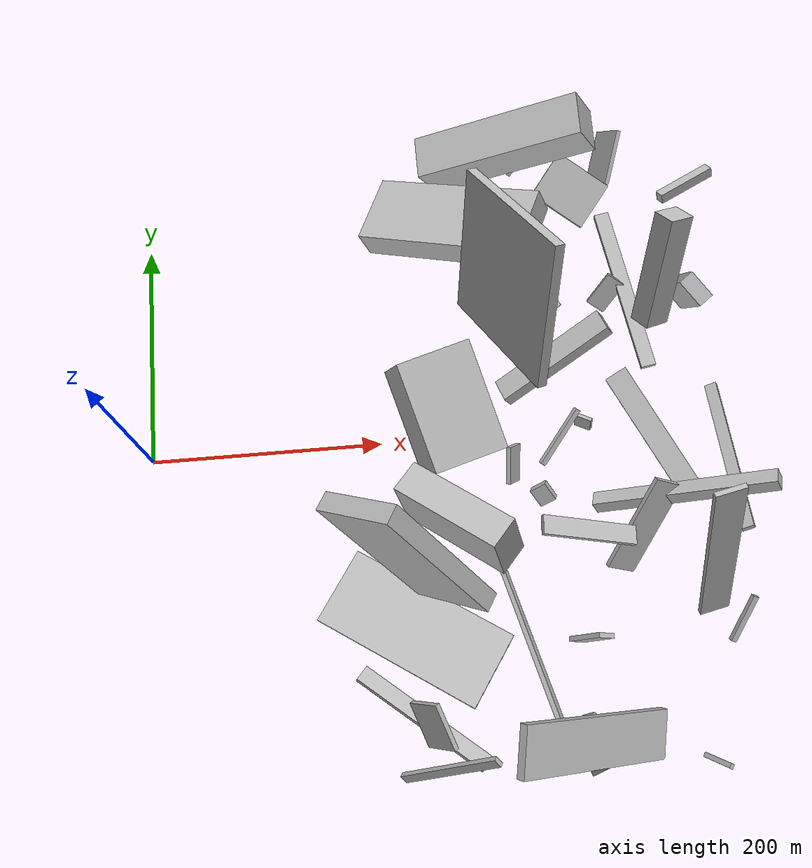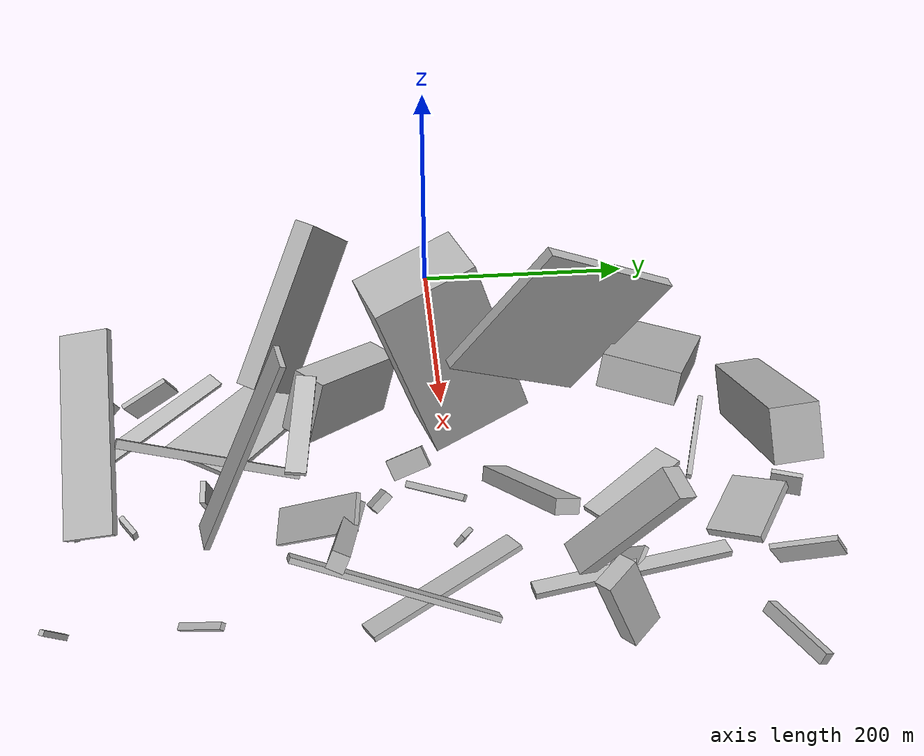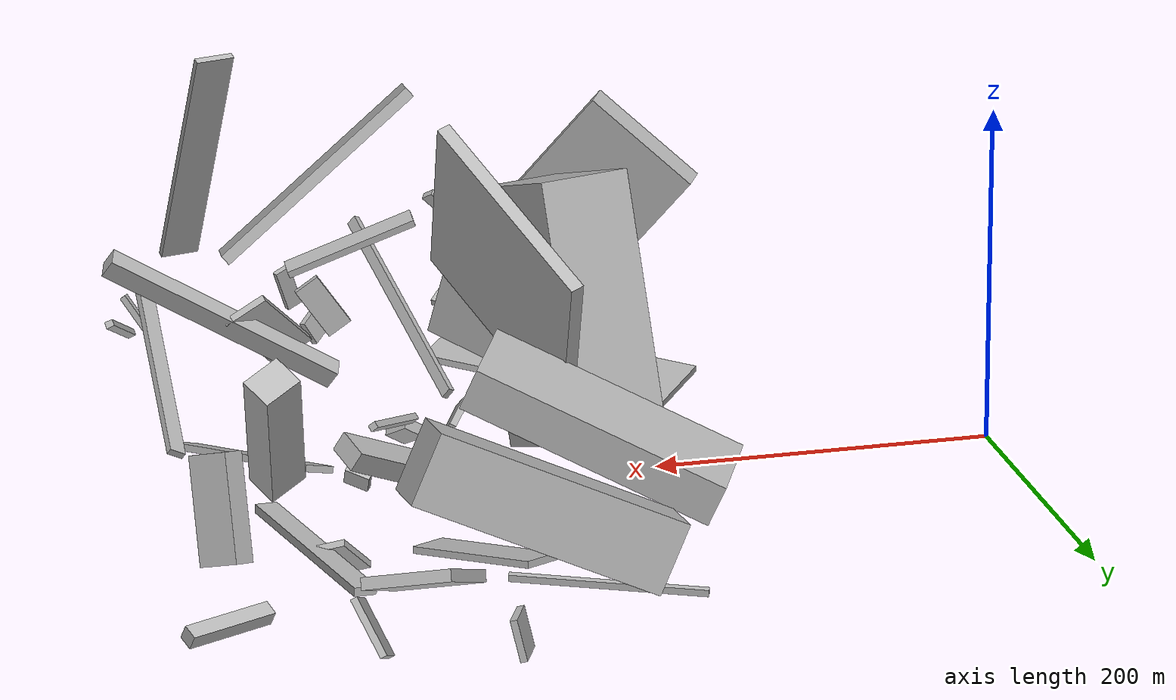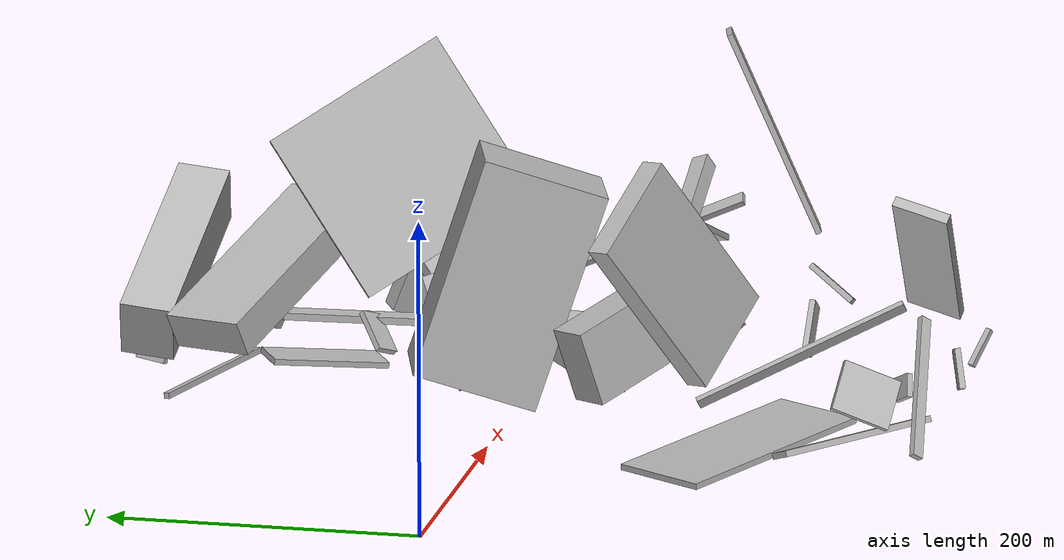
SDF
<sdf version="1.6">
 <world name="default">
  <model name="building_1">
   <static>0</static>
   <pose>335.80361144317783 243.01866665320804 60.56091323229082 0.121430135265068 -0.43626598020812973 -0.039380407303143065</pose>
   <link name="link">
    <gravity>0</gravity>
    <pose>0 0 21.0 0 0 0</pose>
    <collision name="collision"><geometry><box><size>150 36 42</size></box></geometry></collision>
    <visual name="visual">
     <cast_shadows>0</cast_shadows>
     <geometry><box><size>150 36 42</size></box></geometry>
     <material>
      <script>
       <uri>model://HANNAS_wall/materials/scripts</uri>
       <uri>model://HANNAS_wall/materials/textures</uri>
       <name>vrc/HANNAS_wall</name>
      </script>
     </material>
    </visual>
   </link>
  </model>
  <model name="building_5">
   <static>0</static>
   <pose>220.51626123887866 -112.467720614438 116.34124437401475 1.446191251643578 -0.6865668878685378 -0.4500607964079067</pose>
   <link name="link">
    <gravity>0</gravity>
    <pose>0 0 8.0 0 0 0</pose>
    <collision name="collision"><geometry><box><size>75 135 16</size></box></geometry></collision>
    <visual name="visual">
     <cast_shadows>0</cast_shadows>
     <geometry><box><size>75 135 16</size></box></geometry>
     <material>
      <script>
       <uri>model://HANNAS_wall/materials/scripts</uri>
       <uri>model://HANNAS_wall/materials/textures</uri>
       <name>vrc/HANNAS_wall</name>
      </script>
     </material>
    </visual>
   </link>
  </model>
  <model name="building_10">
   <static>0</static>
   <pose>350.5623487468909 -248.95458982595954 19.846083837003366 -2.8508804709992055 0.45975888514185986 0.7764618782461122</pose>
   <link name="link">
    <gravity>0</gravity>
    <pose>0 0 8.0 0 0 0</pose>
    <collision name="collision"><geometry><box><size>17 4 16</size></box></geometry></collision>
    <visual name="visual">
     <cast_shadows>0</cast_shadows>
     <geometry><box><size>17 4 16</size></box></geometry>
     <material>
      <script>
       <uri>model://HANNAS_wall/materials/scripts</uri>
       <uri>model://HANNAS_wall/materials/textures</uri>
       <name>vrc/HANNAS_wall</name>
      </script>
     </material>
    </visual>
   </link>
  </model>
  <model name="building_11">
   <static>0</static>
   <pose>302.42559692297544 45.84916178477883 106.16059993731282 0.5414495789007892 -0.29836104831913207 -2.8521836986710785</pose>
   <link name="link">
    <gravity>0</gravity>
    <pose>0 0 61.0 0 0 0</pose>
    <collision name="collision"><geometry><box><size>8 130 122</size></box></geometry></collision>
    <visual name="visual">
     <cast_shadows>0</cast_shadows>
     <geometry><box><size>8 130 122</size></box></geometry>
     <material>
      <script>
       <uri>model://HANNAS_wall/materials/scripts</uri>
       <uri>model://HANNAS_wall/materials/textures</uri>
       <name>vrc/HANNAS_wall</name>
      </script>
     </material>
    </visual>
   </link>
  </model>
  <model name="building_14">
   <static>0</static>
   <pose>408.8358999997039 200.36680120685097 27.210126613783615 0.9796310703644334 -1.1358976286919558 -1.6393532695014223</pose>
   <link name="link">
    <gravity>0</gravity>
    <pose>0 0 27.0 0 0 0</pose>
    <collision name="collision"><geometry><box><size>7 44 54</size></box></geometry></collision>
    <visual name="visual">
     <cast_shadows>0</cast_shadows>
     <geometry><box><size>7 44 54</size></box></geometry>
     <material>
      <script>
       <uri>model://HANNAS_wall/materials/scripts</uri>
       <uri>model://HANNAS_wall/materials/textures</uri>
       <name>vrc/HANNAS_wall</name>
      </script>
     </material>
    </visual>
   </link>
  </model>
  <model name="building_16">
   <static>0</static>
   <pose>306.1123784456998 -188.18322206663117 42.115874096835775 -1.086824613403708 -0.45650997150951067 -1.3675175333428216</pose>
   <link name="link">
    <gravity>0</gravity>
    <pose>0 0 2.0 0 0 0</pose>
    <collision name="collision"><geometry><box><size>150 7 4</size></box></geometry></collision>
    <visual name="visual">
     <cast_shadows>0</cast_shadows>
     <geometry><box><size>150 7 4</size></box></geometry>
     <material>
      <script>
       <uri>model://HANNAS_wall/materials/scripts</uri>
       <uri>model://HANNAS_wall/materials/textures</uri>
       <name>vrc/HANNAS_wall</name>
      </script>
     </material>
    </visual>
   </link>
  </model>
  <model name="building_17">
   <static>0</static>
   <pose>224.44030290682198 -10.049599045985556 100.77377252024175 1.5580752261564288 -0.32230157823772143 1.8567701451824163</pose>
   <link name="link">
    <gravity>0</gravity>
    <pose>0 0 28.0 0 0 0</pose>
    <collision name="collision"><geometry><box><size>84 150 56</size></box></geometry></collision>
    <visual name="visual">
     <cast_shadows>0</cast_shadows>
     <geometry><box><size>84 150 56</size></box></geometry>
     <material>
      <script>
       <uri>model://HANNAS_wall/materials/scripts</uri>
       <uri>model://HANNAS_wall/materials/textures</uri>
       <name>vrc/HANNAS_wall</name>
      </script>
     </material>
    </visual>
   </link>
  </model>
  <model name="building_18">
   <static>0</static>
   <pose>471.38275530147536 208.60155325852062 20.33030819251114 1.556123893723668 -1.056236869089885 2.0411582572544833</pose>
   <link name="link">
    <gravity>0</gravity>
    <pose>0 0 27.5 0 0 0</pose>
    <collision name="collision"><geometry><box><size>9 9 55</size></box></geometry></collision>
    <visual name="visual">
     <cast_shadows>0</cast_shadows>
     <geometry><box><size>9 9 55</size></box></geometry>
     <material>
      <script>
       <uri>model://HANNAS_wall/materials/scripts</uri>
       <uri>model://HANNAS_wall/materials/textures</uri>
       <name>vrc/HANNAS_wall</name>
      </script>
     </material>
    </visual>
   </link>
  </model>
  <model name="building_20">
   <static>0</static>
   <pose>278.47437391921034 159.81481154071966 80.26325289671797 0.41572260753901225 -0.05428327299433573 -2.0001519787675117</pose>
   <link name="link">
    <gravity>0</gravity>
    <pose>0 0 12.5 0 0 0</pose>
    <collision name="collision"><geometry><box><size>59 150 25</size></box></geometry></collision>
    <visual name="visual">
     <cast_shadows>0</cast_shadows>
     <geometry><box><size>59 150 25</size></box></geometry>
     <material>
      <script>
       <uri>model://HANNAS_wall/materials/scripts</uri>
       <uri>model://HANNAS_wall/materials/textures</uri>
       <name>vrc/HANNAS_wall</name>
      </script>
     </material>
    </visual>
   </link>
  </model>
  <model name="building_23">
   <static>0</static>
   <pose>421.98693819933106 252.01139969728334 24.728729866118016 2.0764850520318623 -0.3987725114717782 1.256294678784111</pose>
   <link name="link">
    <gravity>0</gravity>
    <pose>0 0 2.0 0 0 0</pose>
    <collision name="collision"><geometry><box><size>49 35 4</size></box></geometry></collision>
    <visual name="visual">
     <cast_shadows>0</cast_shadows>
     <geometry><box><size>49 35 4</size></box></geometry>
     <material>
      <script>
       <uri>model://HANNAS_wall/materials/scripts</uri>
       <uri>model://HANNAS_wall/materials/textures</uri>
       <name>vrc/HANNAS_wall</name>
      </script>
     </material>
    </visual>
   </link>
  </model>
  <model name="building_25">
   <static>0</static>
   <pose>372.6478716637108 -77.3150274357832 45.29073926921923 -0.5787141716224093 0.9197149414553091 -0.7683875559903558</pose>
   <link name="link">
    <gravity>0</gravity>
    <pose>0 0 75.0 0 0 0</pose>
    <collision name="collision"><geometry><box><size>12 12 150</size></box></geometry></collision>
    <visual name="visual">
     <cast_shadows>0</cast_shadows>
     <geometry><box><size>12 12 150</size></box></geometry>
     <material>
      <script>
       <uri>model://HANNAS_wall/materials/scripts</uri>
       <uri>model://HANNAS_wall/materials/textures</uri>
       <name>vrc/HANNAS_wall</name>
      </script>
     </material>
    </visual>
   </link>
  </model>
  <model name="building_26">
   <static>0</static>
   <pose>353.7583877048698 -120.07981157794852 112.3765363727505 1.6798076235758712 -0.36999692924323985 3.0231707559234473</pose>
   <link name="link">
    <gravity>0</gravity>
    <pose>0 0 7.5 0 0 0</pose>
    <collision name="collision"><geometry><box><size>79 4 15</size></box></geometry></collision>
    <visual name="visual">
     <cast_shadows>0</cast_shadows>
     <geometry><box><size>79 4 15</size></box></geometry>
     <material>
      <script>
       <uri>model://HANNAS_wall/materials/scripts</uri>
       <uri>model://HANNAS_wall/materials/textures</uri>
       <name>vrc/HANNAS_wall</name>
      </script>
     </material>
    </visual>
   </link>
  </model>
  <model name="building_30">
   <static>0</static>
   <pose>340.55822202545346 -57.056634299967634 17.46151305849061 2.421237212611486 -0.788476483193985 -1.9551244617543067</pose>
   <link name="link">
    <gravity>0</gravity>
    <pose>0 0 7.5 0 0 0</pose>
    <collision name="collision"><geometry><box><size>7 17 15</size></box></geometry></collision>
    <visual name="visual">
     <cast_shadows>0</cast_shadows>
     <geometry><box><size>7 17 15</size></box></geometry>
     <material>
      <script>
       <uri>model://HANNAS_wall/materials/scripts</uri>
       <uri>model://HANNAS_wall/materials/textures</uri>
       <name>vrc/HANNAS_wall</name>
      </script>
     </material>
    </visual>
   </link>
  </model>
  <model name="building_31">
   <static>0</static>
   <pose>483.86256238943463 16.74640670667921 41.495680083075186 0.8270979493142793 0.9178342339033362 -0.6819881318889423</pose>
   <link name="link">
    <gravity>0</gravity>
    <pose>0 0 75.0 0 0 0</pose>
    <collision name="collision"><geometry><box><size>4 10 150</size></box></geometry></collision>
    <visual name="visual">
     <cast_shadows>0</cast_shadows>
     <geometry><box><size>4 10 150</size></box></geometry>
     <material>
      <script>
       <uri>model://HANNAS_wall/materials/scripts</uri>
       <uri>model://HANNAS_wall/materials/textures</uri>
       <name>vrc/HANNAS_wall</name>
      </script>
     </material>
    </visual>
   </link>
  </model>
  <model name="building_34">
   <static>0</static>
   <pose>356.56397676274906 -287.31896717719496 25.488071181581706 -1.6606378692788792 0.36623720060157655 0.30579666653384446</pose>
   <link name="link">
    <gravity>0</gravity>
    <pose>0 0 2.0 0 0 0</pose>
    <collision name="collision"><geometry><box><size>10 27 4</size></box></geometry></collision>
    <visual name="visual">
     <cast_shadows>0</cast_shadows>
     <geometry><box><size>10 27 4</size></box></geometry>
     <material>
      <script>
       <uri>model://HANNAS_wall/materials/scripts</uri>
       <uri>model://HANNAS_wall/materials/textures</uri>
       <name>vrc/HANNAS_wall</name>
      </script>
     </material>
    </visual>
   </link>
  </model>
  <model name="building_35">
   <static>0</static>
   <pose>263.1712399564038 -91.46765489813545 41.026130250042776 -0.08931934363193124 -0.30817399845149795 -0.6806305778243081</pose>
   <link name="link">
    <gravity>0</gravity>
    <pose>0 0 25.5 0 0 0</pose>
    <collision name="collision"><geometry><box><size>99 28 51</size></box></geometry></collision>
    <visual name="visual">
     <cast_shadows>0</cast_shadows>
     <geometry><box><size>99 28 51</size></box></geometry>
     <material>
      <script>
       <uri>model://HANNAS_wall/materials/scripts</uri>
       <uri>model://HANNAS_wall/materials/textures</uri>
       <name>vrc/HANNAS_wall</name>
      </script>
     </material>
    </visual>
   </link>
  </model>
  <model name="building_36">
   <static>0</static>
   <pose>356.61542140069304 45.500883592868576 38.058128832380966 2.2173816419630743 -1.0306190115369094 2.862720800929459</pose>
   <link name="link">
    <gravity>0</gravity>
    <pose>0 0 10.5 0 0 0</pose>
    <collision name="collision"><geometry><box><size>12 108 21</size></box></geometry></collision>
    <visual name="visual">
     <cast_shadows>0</cast_shadows>
     <geometry><box><size>12 108 21</size></box></geometry>
     <material>
      <script>
       <uri>model://HANNAS_wall/materials/scripts</uri>
       <uri>model://HANNAS_wall/materials/textures</uri>
       <name>vrc/HANNAS_wall</name>
      </script>
     </material>
    </visual>
   </link>
  </model>
  <model name="building_37">
   <static>0</static>
   <pose>385.8991752614833 -132.27668084730487 42.34231928167521 0.8314551299642992 -0.5726132768250205 3.0010465870635286</pose>
   <link name="link">
    <gravity>0</gravity>
    <pose>0 0 42.0 0 0 0</pose>
    <collision name="collision"><geometry><box><size>27 4 84</size></box></geometry></collision>
    <visual name="visual">
     <cast_shadows>0</cast_shadows>
     <geometry><box><size>27 4 84</size></box></geometry>
     <material>
      <script>
       <uri>model://HANNAS_wall/materials/scripts</uri>
       <uri>model://HANNAS_wall/materials/textures</uri>
       <name>vrc/HANNAS_wall</name>
      </script>
     </material>
    </visual>
   </link>
  </model>
  <model name="building_38">
   <static>0</static>
   <pose>405.9776370745244 37.211360551049864 32.56387452085557 2.1053148415743137 1.2400830095236972 0.9991383503540485</pose>
   <link name="link">
    <gravity>0</gravity>
    <pose>0 0 62.5 0 0 0</pose>
    <collision name="collision"><geometry><box><size>4 20 125</size></box></geometry></collision>
    <visual name="visual">
     <cast_shadows>0</cast_shadows>
     <geometry><box><size>4 20 125</size></box></geometry>
     <material>
      <script>
       <uri>model://HANNAS_wall/materials/scripts</uri>
       <uri>model://HANNAS_wall/materials/textures</uri>
       <name>vrc/HANNAS_wall</name>
      </script>
     </material>
    </visual>
   </link>
  </model>
  <model name="building_39">
   <static>0</static>
   <pose>278.13215012524626 -204.04984174002064 13.8727804570362 1.6600296093101672 -0.016827411088372515 -2.163121975169909</pose>
   <link name="link">
    <gravity>0</gravity>
    <pose>0 0 75.0 0 0 0</pose>
    <collision name="collision"><geometry><box><size>67 4 150</size></box></geometry></collision>
    <visual name="visual">
     <cast_shadows>0</cast_shadows>
     <geometry><box><size>67 4 150</size></box></geometry>
     <material>
      <script>
       <uri>model://HANNAS_wall/materials/scripts</uri>
       <uri>model://HANNAS_wall/materials/textures</uri>
       <name>vrc/HANNAS_wall</name>
      </script>
     </material>
    </visual>
   </link>
  </model>
  <model name="building_40">
   <static>0</static>
   <pose>218.1159614993636 -235.13374939646187 16.979045148487295 2.791732676944327 -0.0073958243437736585 -0.6916589257950945</pose>
   <link name="link">
    <gravity>0</gravity>
    <pose>0 0 2.0 0 0 0</pose>
    <collision name="collision"><geometry><box><size>124 14 4</size></box></geometry></collision>
    <visual name="visual">
     <cast_shadows>0</cast_shadows>
     <geometry><box><size>124 14 4</size></box></geometry>
     <material>
      <script>
       <uri>model://HANNAS_wall/materials/scripts</uri>
       <uri>model://HANNAS_wall/materials/textures</uri>
       <name>vrc/HANNAS_wall</name>
      </script>
     </material>
    </visual>
   </link>
  </model>
  <model name="building_44">
   <static>0</static>
   <pose>443.4256246618361 -176.58531214179493 92.72863109260146 0.006849036233457555 0.42024131744875515 1.7829675425104214</pose>
   <link name="link">
    <gravity>0</gravity>
    <pose>0 0 75.0 0 0 0</pose>
    <collision name="collision"><geometry><box><size>4 23 150</size></box></geometry></collision>
    <visual name="visual">
     <cast_shadows>0</cast_shadows>
     <geometry><box><size>4 23 150</size></box></geometry>
     <material>
      <script>
       <uri>model://HANNAS_wall/materials/scripts</uri>
       <uri>model://HANNAS_wall/materials/textures</uri>
       <name>vrc/HANNAS_wall</name>
      </script>
     </material>
    </visual>
   </link>
  </model>
  <model name="building_45">
   <static>0</static>
   <pose>335.26612975011415 140.89580587841874 12.87135324163661 -0.09684001242210961 -0.14569630286175914 2.2050154454047126</pose>
   <link name="link">
    <gravity>0</gravity>
    <pose>0 0 2.0 0 0 0</pose>
    <collision name="collision"><geometry><box><size>84 25 4</size></box></geometry></collision>
    <visual name="visual">
     <cast_shadows>0</cast_shadows>
     <geometry><box><size>84 25 4</size></box></geometry>
     <material>
      <script>
       <uri>model://HANNAS_wall/materials/scripts</uri>
       <uri>model://HANNAS_wall/materials/textures</uri>
       <name>vrc/HANNAS_wall</name>
      </script>
     </material>
    </visual>
   </link>
  </model>
  <model name="building_46">
   <static>0</static>
   <pose>440.9221270635221 115.89286938695952 81.19502670649628 0.7236848157452733 -0.9234244284149246 1.3316484743152914</pose>
   <link name="link">
    <gravity>0</gravity>
    <pose>0 0 10.0 0 0 0</pose>
    <collision name="collision"><geometry><box><size>100 24 20</size></box></geometry></collision>
    <visual name="visual">
     <cast_shadows>0</cast_shadows>
     <geometry><box><size>100 24 20</size></box></geometry>
     <material>
      <script>
       <uri>model://HANNAS_wall/materials/scripts</uri>
       <uri>model://HANNAS_wall/materials/textures</uri>
       <name>vrc/HANNAS_wall</name>
      </script>
     </material>
    </visual>
   </link>
  </model>
  <model name="building_47">
   <static>0</static>
   <pose>226.67840770080804 -241.8955516543774 40.396895217846364 1.046471461591427 0.41185983854020763 -1.2271234985081731</pose>
   <link name="link">
    <gravity>0</gravity>
    <pose>0 0 2.0 0 0 0</pose>
    <collision name="collision"><geometry><box><size>40 34 4</size></box></geometry></collision>
    <visual name="visual">
     <cast_shadows>0</cast_shadows>
     <geometry><box><size>40 34 4</size></box></geometry>
     <material>
      <script>
       <uri>model://HANNAS_wall/materials/scripts</uri>
       <uri>model://HANNAS_wall/materials/textures</uri>
       <name>vrc/HANNAS_wall</name>
      </script>
     </material>
    </visual>
   </link>
  </model>
  <model name="building_48">
   <static>0</static>
   <pose>308.78905386946644 -48.58219609584515 21.218539799499183 0.9938408470515093 0.47095233698578576 2.7730098762073756</pose>
   <link name="link">
    <gravity>0</gravity>
    <pose>0 0 16.0 0 0 0</pose>
    <collision name="collision"><geometry><box><size>4 17 32</size></box></geometry></collision>
    <visual name="visual">
     <cast_shadows>0</cast_shadows>
     <geometry><box><size>4 17 32</size></box></geometry>
     <material>
      <script>
       <uri>model://HANNAS_wall/materials/scripts</uri>
       <uri>model://HANNAS_wall/materials/textures</uri>
       <name>vrc/HANNAS_wall</name>
      </script>
     </material>
    </visual>
   </link>
  </model>
  <model name="building_49">
   <static>0</static>
   <pose>375.4107723796572 1.4044737767427602 11.951206071111738 2.566796345627927 -1.0313969423785472 1.5218411773111324</pose>
   <link name="link">
    <gravity>0</gravity>
    <pose>0 0 2.0 0 0 0</pose>
    <collision name="collision"><geometry><box><size>11 15 4</size></box></geometry></collision>
    <visual name="visual">
     <cast_shadows>0</cast_shadows>
     <geometry><box><size>11 15 4</size></box></geometry>
     <material>
      <script>
       <uri>model://HANNAS_wall/materials/scripts</uri>
       <uri>model://HANNAS_wall/materials/textures</uri>
       <name>vrc/HANNAS_wall</name>
      </script>
     </material>
    </visual>
   </link>
  </model>
  <model name="building_50">
   <static>0</static>
   <pose>484.66686714303347 95.63487671939706 37.39574844469252 1.2634213626788715 0.21271724495664449 -2.5138882267433447</pose>
   <link name="link">
    <gravity>0</gravity>
    <pose>0 0 13.5 0 0 0</pose>
    <collision name="collision"><geometry><box><size>14 62 27</size></box></geometry></collision>
    <visual name="visual">
     <cast_shadows>0</cast_shadows>
     <geometry><box><size>14 62 27</size></box></geometry>
     <material>
      <script>
       <uri>model://HANNAS_wall/materials/scripts</uri>
       <uri>model://HANNAS_wall/materials/textures</uri>
       <name>vrc/HANNAS_wall</name>
      </script>
     </material>
    </visual>
   </link>
  </model>
  <model name="building_52">
   <static>0</static>
   <pose>281.1181876080277 204.06528589778713 13.747427654374182 0.04731346520434543 -0.08202041180501712 -1.9131632076875835</pose>
   <link name="link">
    <gravity>0</gravity>
    <pose>0 0 2.0 0 0 0</pose>
    <collision name="collision"><geometry><box><size>4 110 4</size></box></geometry></collision>
    <visual name="visual">
     <cast_shadows>0</cast_shadows>
     <geometry><box><size>4 110 4</size></box></geometry>
     <material>
      <script>
       <uri>model://HANNAS_wall/materials/scripts</uri>
       <uri>model://HANNAS_wall/materials/textures</uri>
       <name>vrc/HANNAS_wall</name>
      </script>
     </material>
    </visual>
   </link>
  </model>
  <model name="building_54">
   <static>0</static>
   <pose>399.15621743150655 -263.4040817199009 55.705976030178434 0.3572574577452605 -0.8259602763570792 -0.4238275118101733</pose>
   <link name="link">
    <gravity>0</gravity>
    <pose>0 0 75.0 0 0 0</pose>
    <collision name="collision"><geometry><box><size>7 38 150</size></box></geometry></collision>
    <visual name="visual">
     <cast_shadows>0</cast_shadows>
     <geometry><box><size>7 38 150</size></box></geometry>
     <material>
      <script>
       <uri>model://HANNAS_wall/materials/scripts</uri>
       <uri>model://HANNAS_wall/materials/textures</uri>
       <name>vrc/HANNAS_wall</name>
      </script>
     </material>
    </visual>
   </link>
  </model>
  <model name="building_58">
   <static>0</static>
   <pose>232.38439262612275 -274.1418237542288 47.95859588842464 2.369937548497536 -0.7837091999739465 0.08261166808302217</pose>
   <link name="link">
    <gravity>0</gravity>
    <pose>0 0 4.0 0 0 0</pose>
    <collision name="collision"><geometry><box><size>102 4 8</size></box></geometry></collision>
    <visual name="visual">
     <cast_shadows>0</cast_shadows>
     <geometry><box><size>102 4 8</size></box></geometry>
     <material>
      <script>
       <uri>model://HANNAS_wall/materials/scripts</uri>
       <uri>model://HANNAS_wall/materials/textures</uri>
       <name>vrc/HANNAS_wall</name>
      </script>
     </material>
    </visual>
   </link>
  </model>
  <model name="building_59">
   <static>0</static>
   <pose>480.5648711319017 -181.8816400338715 45.029460365797014 0.7973114445385114 -0.8773744261432077 -1.19962442587759</pose>
   <link name="link">
    <gravity>0</gravity>
    <pose>0 0 2.5 0 0 0</pose>
    <collision name="collision"><geometry><box><size>4 41 5</size></box></geometry></collision>
    <visual name="visual">
     <cast_shadows>0</cast_shadows>
     <geometry><box><size>4 41 5</size></box></geometry>
     <material>
      <script>
       <uri>model://HANNAS_wall/materials/scripts</uri>
       <uri>model://HANNAS_wall/materials/textures</uri>
       <name>vrc/HANNAS_wall</name>
      </script>
     </material>
    </visual>
   </link>
  </model>
  <model name="building_65">
   <static>0</static>
   <pose>348.54998575632584 272.582317387431 16.571815382839983 1.6185879742387257 0.2482303667540314 -0.39459207781099215</pose>
   <link name="link">
    <gravity>0</gravity>
    <pose>0 0 12.0 0 0 0</pose>
    <collision name="collision"><geometry><box><size>4 24 24</size></box></geometry></collision>
    <visual name="visual">
     <cast_shadows>0</cast_shadows>
     <geometry><box><size>4 24 24</size></box></geometry>
     <material>
      <script>
       <uri>model://HANNAS_wall/materials/scripts</uri>
       <uri>model://HANNAS_wall/materials/textures</uri>
       <name>vrc/HANNAS_wall</name>
      </script>
     </material>
    </visual>
   </link>
  </model>
  <model name="building_69">
   <static>0</static>
   <pose>355.3369201110947 -184.26677105851707 47.83276401297954 1.579416686370906 0.6047706659530377 -0.06790233391717317</pose>
   <link name="link">
    <gravity>0</gravity>
    <pose>0 0 2.0 0 0 0</pose>
    <collision name="collision"><geometry><box><size>16 35 4</size></box></geometry></collision>
    <visual name="visual">
     <cast_shadows>0</cast_shadows>
     <geometry><box><size>16 35 4</size></box></geometry>
     <material>
      <script>
       <uri>model://HANNAS_wall/materials/scripts</uri>
       <uri>model://HANNAS_wall/materials/textures</uri>
       <name>vrc/HANNAS_wall</name>
      </script>
     </material>
    </visual>
   </link>
  </model>
  <model name="building_71">
   <static>0</static>
   <pose>439.18472674114616 46.90041381117939 16.44156299595492 1.023368945005425 -1.5046520163155344 -2.4330479314829208</pose>
   <link name="link">
    <gravity>0</gravity>
    <pose>0 0 75.0 0 0 0</pose>
    <collision name="collision"><geometry><box><size>5 13 150</size></box></geometry></collision>
    <visual name="visual">
     <cast_shadows>0</cast_shadows>
     <geometry><box><size>5 13 150</size></box></geometry>
     <material>
      <script>
       <uri>model://HANNAS_wall/materials/scripts</uri>
       <uri>model://HANNAS_wall/materials/textures</uri>
       <name>vrc/HANNAS_wall</name>
      </script>
     </material>
    </visual>
   </link>
  </model>
  <model name="building_72">
   <static>0</static>
   <pose>447.41262030979135 -286.9744423003046 15.980299960685223 2.2298785766901483 -0.08767524050086661 1.060394245796914</pose>
   <link name="link">
    <gravity>0</gravity>
    <pose>0 0 2.0 0 0 0</pose>
    <collision name="collision"><geometry><box><size>4 28 4</size></box></geometry></collision>
    <visual name="visual">
     <cast_shadows>0</cast_shadows>
     <geometry><box><size>4 28 4</size></box></geometry>
     <material>
      <script>
       <uri>model://HANNAS_wall/materials/scripts</uri>
       <uri>model://HANNAS_wall/materials/textures</uri>
       <name>vrc/HANNAS_wall</name>
      </script>
     </material>
    </visual>
   </link>
  </model>
  <model name="building_75">
   <static>0</static>
   <pose>404.08657036742903 126.05391350052298 15.831969947079944 2.0134638208795503 -0.7067150047308327 0.7145163999854113</pose>
   <link name="link">
    <gravity>0</gravity>
    <pose>0 0 9.0 0 0 0</pose>
    <collision name="collision"><geometry><box><size>32 4 18</size></box></geometry></collision>
    <visual name="visual">
     <cast_shadows>0</cast_shadows>
     <geometry><box><size>32 4 18</size></box></geometry>
     <material>
      <script>
       <uri>model://HANNAS_wall/materials/scripts</uri>
       <uri>model://HANNAS_wall/materials/textures</uri>
       <name>vrc/HANNAS_wall</name>
      </script>
     </material>
    </visual>
   </link>
  </model>
  <model name="building_76">
   <static>0</static>
   <pose>350.1840765782498 -15.1124870667785 34.46011308238788 0.3131177222887296 0.6840140216419935 -0.47224444519966613</pose>
   <link name="link">
    <gravity>0</gravity>
    <pose>0 0 2.0 0 0 0</pose>
    <collision name="collision"><geometry><box><size>5 55 4</size></box></geometry></collision>
    <visual name="visual">
     <cast_shadows>0</cast_shadows>
     <geometry><box><size>5 55 4</size></box></geometry>
     <material>
      <script>
       <uri>model://HANNAS_wall/materials/scripts</uri>
       <uri>model://HANNAS_wall/materials/textures</uri>
       <name>vrc/HANNAS_wall</name>
      </script>
     </material>
    </visual>
   </link>
  </model>
 </world>
</sdf>
